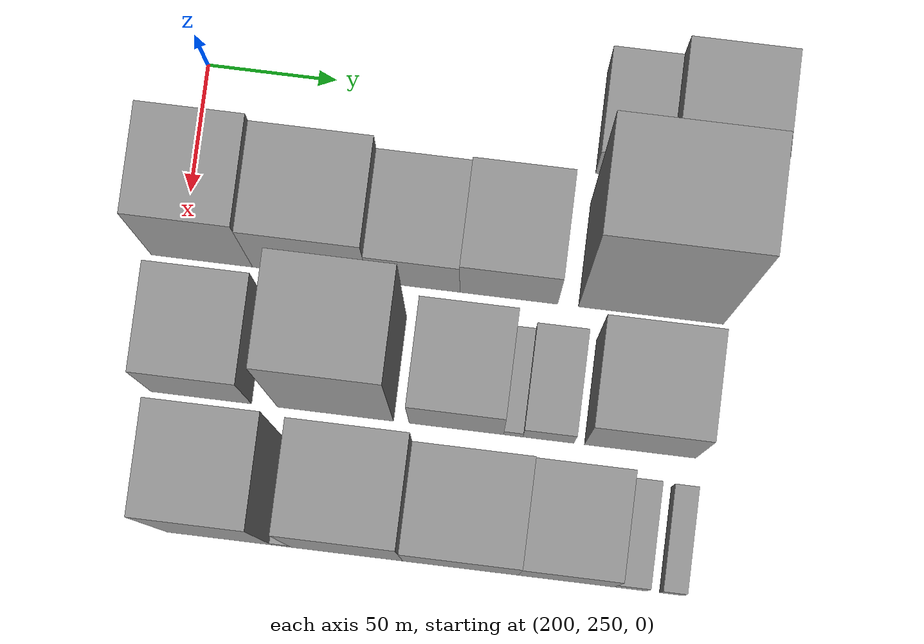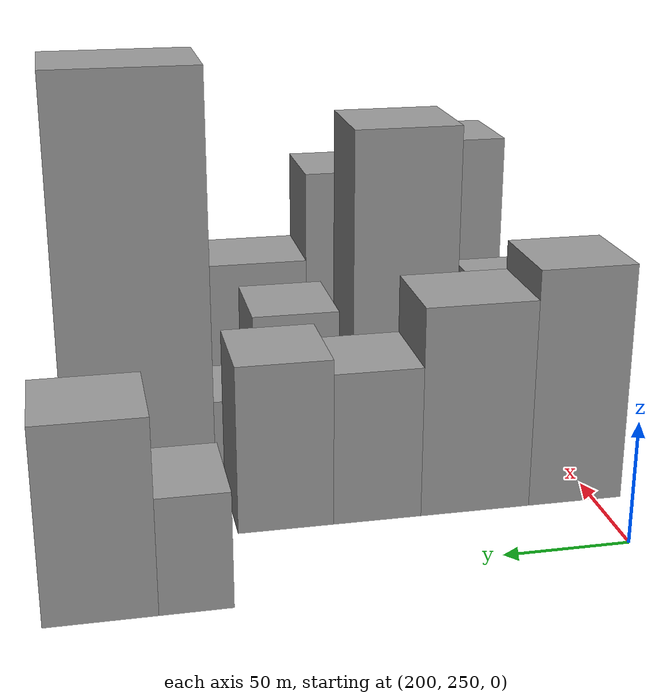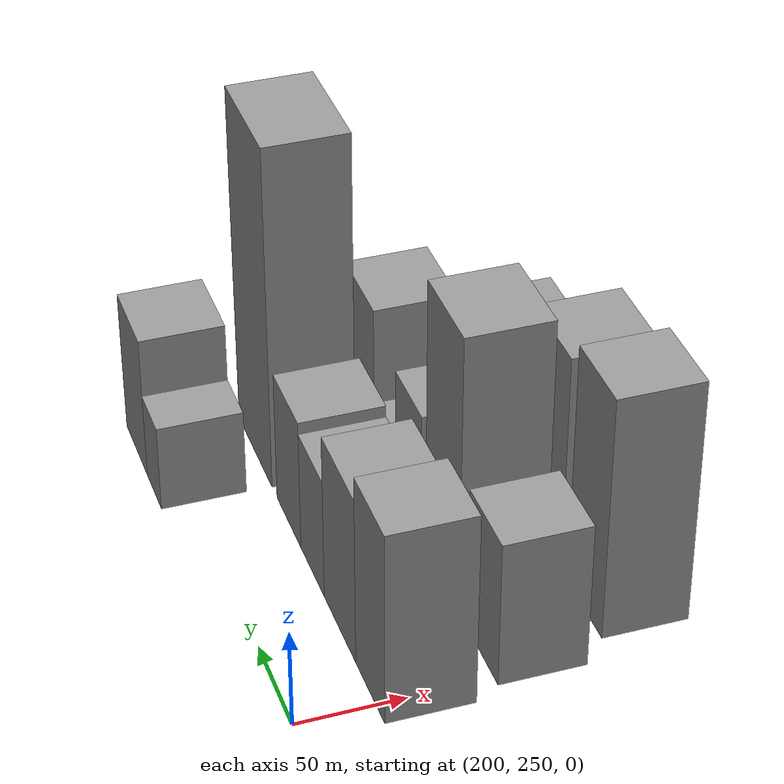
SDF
<sdf version="1.6">
 <world name="default">
  <model name="building_148">
   <static>1</static>
   <pose>204.0000 416.4373 0 0.000000 0.000000 0.000000</pose>
   <link name="link">
    <pose>0 0 22.50 0 0 0</pose>
    <collision name="collision"><geometry><box><size>40.0000 26.2798 45.0000</size></box></geometry></collision>
    <visual name="visual">
     <cast_shadows>0</cast_shadows>
     <geometry><box><size>40.0000 26.2798 45.0000</size></box></geometry>
     <material>
      <script>
       <uri>model://grey_wall/materials/scripts</uri>
       <uri>model://grey_wall/materials/textures</uri>
       <name>vrc/grey_wall</name>
      </script>
     </material>
    </visual>
   </link>
  </model>
  <model name="building_149">
   <static>1</static>
   <pose>204.0000 449.4391 0 0.000000 0.000000 0.000000</pose>
   <link name="link">
    <pose>0 0 37.50 0 0 0</pose>
    <collision name="collision"><geometry><box><size>40.0000 39.7237 75.0000</size></box></geometry></collision>
    <visual name="visual">
     <cast_shadows>0</cast_shadows>
     <geometry><box><size>40.0000 39.7237 75.0000</size></box></geometry>
     <material>
      <script>
       <uri>model://grey_wall/materials/scripts</uri>
       <uri>model://grey_wall/materials/textures</uri>
       <name>vrc/grey_wall</name>
      </script>
     </material>
    </visual>
   </link>
  </model>
  <model name="building_194">
   <static>1</static>
   <pose>256.0000 257.9091 0 0.000000 0.000000 0.000000</pose>
   <link name="link">
    <pose>0 0 49.50 0 0 0</pose>
    <collision name="collision"><geometry><box><size>40.0000 39.0282 99.0000</size></box></geometry></collision>
    <visual name="visual">
     <cast_shadows>0</cast_shadows>
     <geometry><box><size>40.0000 39.0282 99.0000</size></box></geometry>
     <material>
      <script>
       <uri>model://grey_wall/materials/scripts</uri>
       <uri>model://grey_wall/materials/textures</uri>
       <name>vrc/grey_wall</name>
      </script>
     </material>
    </visual>
   </link>
  </model>
  <model name="building_195">
   <static>1</static>
   <pose>256.0000 299.7390 0 0.000000 0.000000 0.000000</pose>
   <link name="link">
    <pose>0 0 43.50 0 0 0</pose>
    <collision name="collision"><geometry><box><size>40.0000 44.6315 87.0000</size></box></geometry></collision>
    <visual name="visual">
     <cast_shadows>0</cast_shadows>
     <geometry><box><size>40.0000 44.6315 87.0000</size></box></geometry>
     <material>
      <script>
       <uri>model://grey_wall/materials/scripts</uri>
       <uri>model://grey_wall/materials/textures</uri>
       <name>vrc/grey_wall</name>
      </script>
     </material>
    </visual>
   </link>
  </model>
  <model name="building_196">
   <static>1</static>
   <pose>256.0000 339.6181 0 0.000000 0.000000 0.000000</pose>
   <link name="link">
    <pose>0 0 31.50 0 0 0</pose>
    <collision name="collision"><geometry><box><size>40.0000 35.1269 63.0000</size></box></geometry></collision>
    <visual name="visual">
     <cast_shadows>0</cast_shadows>
     <geometry><box><size>40.0000 35.1269 63.0000</size></box></geometry>
     <material>
      <script>
       <uri>model://grey_wall/materials/scripts</uri>
       <uri>model://grey_wall/materials/textures</uri>
       <name>vrc/grey_wall</name>
      </script>
     </material>
    </visual>
   </link>
  </model>
  <model name="building_197">
   <static>1</static>
   <pose>256.0000 375.9608 0 0.000000 0.000000 0.000000</pose>
   <link name="link">
    <pose>0 0 34.50 0 0 0</pose>
    <collision name="collision"><geometry><box><size>40.0000 37.5584 69.0000</size></box></geometry></collision>
    <visual name="visual">
     <cast_shadows>0</cast_shadows>
     <geometry><box><size>40.0000 37.5584 69.0000</size></box></geometry>
     <material>
      <script>
       <uri>model://grey_wall/materials/scripts</uri>
       <uri>model://grey_wall/materials/textures</uri>
       <name>vrc/grey_wall</name>
      </script>
     </material>
    </visual>
   </link>
  </model>
  <model name="building_198">
   <static>1</static>
   <pose>256.0000 430.5627 0 0.000000 0.000000 0.000000</pose>
   <link name="link">
    <pose>0 0 90.00 0 0 0</pose>
    <collision name="collision"><geometry><box><size>40.0000 55.6454 180.0000</size></box></geometry></collision>
    <visual name="visual">
     <cast_shadows>0</cast_shadows>
     <geometry><box><size>40.0000 55.6454 180.0000</size></box></geometry>
     <material>
      <script>
       <uri>model://grey_wall/materials/scripts</uri>
       <uri>model://grey_wall/materials/textures</uri>
       <name>vrc/grey_wall</name>
      </script>
     </material>
    </visual>
   </link>
  </model>
  <model name="building_244">
   <static>1</static>
   <pose>308.0000 264.6372 0 0.000000 0.000000 0.000000</pose>
   <link name="link">
    <pose>0 0 37.50 0 0 0</pose>
    <collision name="collision"><geometry><box><size>40.0000 38.5246 75.0000</size></box></geometry></collision>
    <visual name="visual">
     <cast_shadows>0</cast_shadows>
     <geometry><box><size>40.0000 38.5246 75.0000</size></box></geometry>
     <material>
      <script>
       <uri>model://grey_wall/materials/scripts</uri>
       <uri>model://grey_wall/materials/textures</uri>
       <name>vrc/grey_wall</name>
      </script>
     </material>
    </visual>
   </link>
  </model>
  <model name="building_245">
   <static>1</static>
   <pose>308.0000 316.0681 0 0.000000 0.000000 0.000000</pose>
   <link name="link">
    <pose>0 0 72.00 0 0 0</pose>
    <collision name="collision"><geometry><box><size>40.0000 44.3372 144.0000</size></box></geometry></collision>
    <visual name="visual">
     <cast_shadows>0</cast_shadows>
     <geometry><box><size>40.0000 44.3372 144.0000</size></box></geometry>
     <material>
      <script>
       <uri>model://grey_wall/materials/scripts</uri>
       <uri>model://grey_wall/materials/textures</uri>
       <name>vrc/grey_wall</name>
      </script>
     </material>
    </visual>
   </link>
  </model>
  <model name="building_246">
   <static>1</static>
   <pose>308.0000 362.2526 0 0.000000 0.000000 0.000000</pose>
   <link name="link">
    <pose>0 0 34.50 0 0 0</pose>
    <collision name="collision"><geometry><box><size>40.0000 36.0318 69.0000</size></box></geometry></collision>
    <visual name="visual">
     <cast_shadows>0</cast_shadows>
     <geometry><box><size>40.0000 36.0318 69.0000</size></box></geometry>
     <material>
      <script>
       <uri>model://grey_wall/materials/scripts</uri>
       <uri>model://grey_wall/materials/textures</uri>
       <name>vrc/grey_wall</name>
      </script>
     </material>
    </visual>
   </link>
  </model>
  <model name="building_247">
   <static>1</static>
   <pose>308.0000 383.9522 0 0.000000 0.000000 0.000000</pose>
   <link name="link">
    <pose>0 0 7.50 0 0 0</pose>
    <collision name="collision"><geometry><box><size>40.0000 7.3675 15.0000</size></box></geometry></collision>
    <visual name="visual">
     <cast_shadows>0</cast_shadows>
     <geometry><box><size>40.0000 7.3675 15.0000</size></box></geometry>
     <material>
      <script>
       <uri>model://grey_wall/materials/scripts</uri>
       <uri>model://grey_wall/materials/textures</uri>
       <name>vrc/grey_wall</name>
      </script>
     </material>
    </visual>
   </link>
  </model>
  <model name="building_248">
   <static>1</static>
   <pose>308.0000 397.3643 0 0.000000 0.000000 0.000000</pose>
   <link name="link">
    <pose>0 0 16.50 0 0 0</pose>
    <collision name="collision"><geometry><box><size>40.0000 19.4566 33.0000</size></box></geometry></collision>
    <visual name="visual">
     <cast_shadows>0</cast_shadows>
     <geometry><box><size>40.0000 19.4566 33.0000</size></box></geometry>
     <material>
      <script>
       <uri>model://grey_wall/materials/scripts</uri>
       <uri>model://grey_wall/materials/textures</uri>
       <name>vrc/grey_wall</name>
      </script>
     </material>
    </visual>
   </link>
  </model>
  <model name="building_249">
   <static>1</static>
   <pose>308.0000 432.3552 0 0.000000 0.000000 0.000000</pose>
   <link name="link">
    <pose>0 0 40.50 0 0 0</pose>
    <collision name="collision"><geometry><box><size>40.0000 42.5251 81.0000</size></box></geometry></collision>
    <visual name="visual">
     <cast_shadows>0</cast_shadows>
     <geometry><box><size>40.0000 42.5251 81.0000</size></box></geometry>
     <material>
      <script>
       <uri>model://grey_wall/materials/scripts</uri>
       <uri>model://grey_wall/materials/textures</uri>
       <name>vrc/grey_wall</name>
      </script>
     </material>
    </visual>
   </link>
  </model>
  <model name="building_294">
   <static>1</static>
   <pose>360.0000 278.6396 0 0.000000 0.000000 0.000000</pose>
   <link name="link">
    <pose>0 0 63.00 0 0 0</pose>
    <collision name="collision"><geometry><box><size>40.0000 39.7578 126.0000</size></box></geometry></collision>
    <visual name="visual">
     <cast_shadows>0</cast_shadows>
     <geometry><box><size>40.0000 39.7578 126.0000</size></box></geometry>
     <material>
      <script>
       <uri>model://grey_wall/materials/scripts</uri>
       <uri>model://grey_wall/materials/textures</uri>
       <name>vrc/grey_wall</name>
      </script>
     </material>
    </visual>
   </link>
  </model>
  <model name="building_295">
   <static>1</static>
   <pose>360.0000 302.2321 0 0.000000 0.000000 0.000000</pose>
   <link name="link">
    <pose>0 0 7.50 0 0 0</pose>
    <collision name="collision"><geometry><box><size>40.0000 7.4271 15.0000</size></box></geometry></collision>
    <visual name="visual">
     <cast_shadows>0</cast_shadows>
     <geometry><box><size>40.0000 7.4271 15.0000</size></box></geometry>
     <material>
      <script>
       <uri>model://grey_wall/materials/scripts</uri>
       <uri>model://grey_wall/materials/textures</uri>
       <name>vrc/grey_wall</name>
      </script>
     </material>
    </visual>
   </link>
  </model>
  <model name="building_296">
   <static>1</static>
   <pose>360.0000 327.1491 0 0.000000 0.000000 0.000000</pose>
   <link name="link">
    <pose>0 0 57.00 0 0 0</pose>
    <collision name="collision"><geometry><box><size>40.0000 42.4069 114.0000</size></box></geometry></collision>
    <visual name="visual">
     <cast_shadows>0</cast_shadows>
     <geometry><box><size>40.0000 42.4069 114.0000</size></box></geometry>
     <material>
      <script>
       <uri>model://grey_wall/materials/scripts</uri>
       <uri>model://grey_wall/materials/textures</uri>
       <name>vrc/grey_wall</name>
      </script>
     </material>
    </visual>
   </link>
  </model>
  <model name="building_297">
   <static>1</static>
   <pose>360.0000 370.2904 0 0.000000 0.000000 0.000000</pose>
   <link name="link">
    <pose>0 0 37.50 0 0 0</pose>
    <collision name="collision"><geometry><box><size>40.0000 43.8759 75.0000</size></box></geometry></collision>
    <visual name="visual">
     <cast_shadows>0</cast_shadows>
     <geometry><box><size>40.0000 43.8759 75.0000</size></box></geometry>
     <material>
      <script>
       <uri>model://grey_wall/materials/scripts</uri>
       <uri>model://grey_wall/materials/textures</uri>
       <name>vrc/grey_wall</name>
      </script>
     </material>
    </visual>
   </link>
  </model>
  <model name="building_298">
   <static>1</static>
   <pose>360.0000 410.2492 0 0.000000 0.000000 0.000000</pose>
   <link name="link">
    <pose>0 0 34.50 0 0 0</pose>
    <collision name="collision"><geometry><box><size>40.0000 36.0416 69.0000</size></box></geometry></collision>
    <visual name="visual">
     <cast_shadows>0</cast_shadows>
     <geometry><box><size>40.0000 36.0416 69.0000</size></box></geometry>
     <material>
      <script>
       <uri>model://grey_wall/materials/scripts</uri>
       <uri>model://grey_wall/materials/textures</uri>
       <name>vrc/grey_wall</name>
      </script>
     </material>
    </visual>
   </link>
  </model>
  <model name="building_299">
   <static>1</static>
   <pose>360.0000 434.4319 0 0.000000 0.000000 0.000000</pose>
   <link name="link">
    <pose>0 0 13.50 0 0 0</pose>
    <collision name="collision"><geometry><box><size>40.0000 12.3239 27.0000</size></box></geometry></collision>
    <visual name="visual">
     <cast_shadows>0</cast_shadows>
     <geometry><box><size>40.0000 12.3239 27.0000</size></box></geometry>
     <material>
      <script>
       <uri>model://grey_wall/materials/scripts</uri>
       <uri>model://grey_wall/materials/textures</uri>
       <name>vrc/grey_wall</name>
      </script>
     </material>
    </visual>
   </link>
  </model>
  <model name="building_300">
   <static>1</static>
   <pose>360.0000 450.1114 0 0.000000 0.000000 0.000000</pose>
   <link name="link">
    <pose>0 0 10.50 0 0 0</pose>
    <collision name="collision"><geometry><box><size>40.0000 9.0350 21.0000</size></box></geometry></collision>
    <visual name="visual">
     <cast_shadows>0</cast_shadows>
     <geometry><box><size>40.0000 9.0350 21.0000</size></box></geometry>
     <material>
      <script>
       <uri>model://grey_wall/materials/scripts</uri>
       <uri>model://grey_wall/materials/textures</uri>
       <name>vrc/grey_wall</name>
      </script>
     </material>
    </visual>
   </link>
  </model>
 </world>
</sdf>
